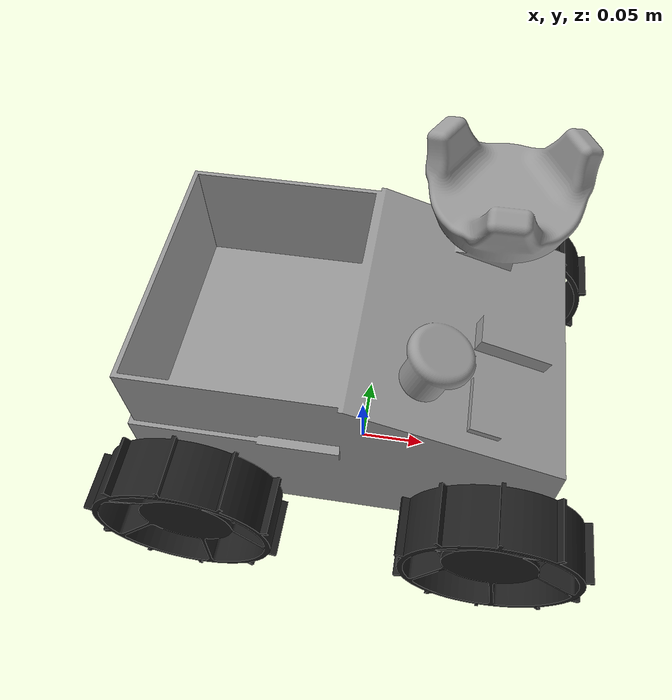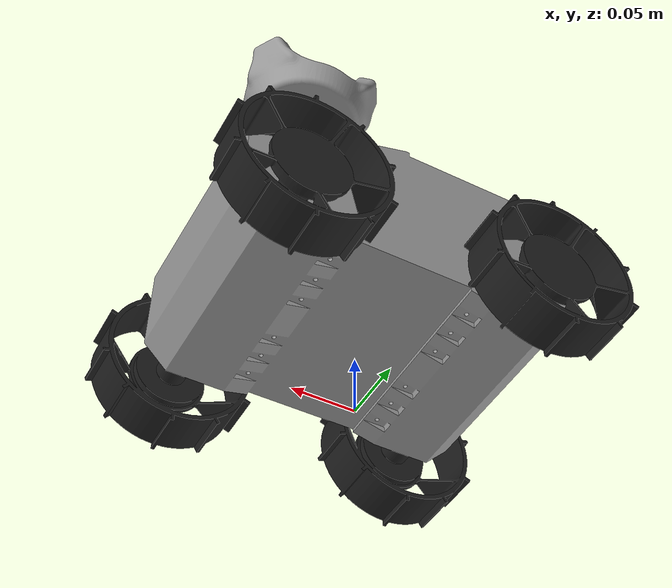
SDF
<?xml version='1.0'?>
<sdf version='1.6'>
  <model name='transporter'>
    <link name='base_link'>
      <pose frame=''>0 0.003 0.1576 0 -0 0</pose>
      <inertial>
        <mass>1</mass>
        <inertia>
          <ixx>0.166667</ixx>
          <ixy>0</ixy>
          <ixz>0</ixz>
          <iyy>0.166667</iyy>
          <iyz>0</iyz>
          <izz>0.166667</izz>
        </inertia>
        <pose frame=''>0 0 0 0 -0 0</pose>
      </inertial>
      <self_collide>0</self_collide>
      <kinematic>0</kinematic>
      <gravity>1</gravity>
      <visual name='visual'>
        <pose frame=''>0 0 0 0 -0 0</pose>
        <geometry>
          <mesh>
            <uri>/home/ssr/ros_kinetic/rmc_dev_ws/src/2018_robot/simulations/gazebo_rmc_sim/models/transporter/minibot_base_link.stl</uri>
          </mesh>
        </geometry>
        <material>
          <lighting>1</lighting>
          <script>
            <uri>file://media/materials/scripts/gazebo.material</uri>
            <name>Gazebo/Grey</name>
          </script>
          <ambient>0.3 0.3 0.3 1</ambient>
          <diffuse>0.7 0.7 0.7 1</diffuse>
          <specular>0.01 0.01 0.01 1</specular>
          <emissive>0 0 0 1</emissive>
          <shader type='vertex'>
            <normal_map>__default__</normal_map>
          </shader>
        </material>
        <cast_shadows>1</cast_shadows>
        <transparency>0</transparency>
      </visual>
      <collision name='collision_0'>
        <laser_retro>0</laser_retro>
        <max_contacts>10</max_contacts>
        <pose frame=''>0 0 0 0 -0 0</pose>
        <geometry>
          <mesh>
            <uri>/home/ssr/ros_kinetic/rmc_dev_ws/src/2018_robot/simulations/gazebo_rmc_sim/models/transporter/minibot_frame_collision.stl</uri>
          </mesh>
        </geometry>
        <surface>
          <friction>
            <ode>
              <mu>1</mu>
              <mu2>1</mu2>
              <fdir1>0 0 0</fdir1>
              <slip1>0</slip1>
              <slip2>0</slip2>
            </ode>
            <torsional>
              <coefficient>1</coefficient>
              <patch_radius>0</patch_radius>
              <surface_radius>0</surface_radius>
              <use_patch_radius>1</use_patch_radius>
              <ode>
                <slip>0</slip>
              </ode>
            </torsional>
          </friction>
          <bounce>
            <restitution_coefficient>0</restitution_coefficient>
            <threshold>1e+06</threshold>
          </bounce>
          <contact>
            <collide_without_contact>0</collide_without_contact>
            <collide_without_contact_bitmask>1</collide_without_contact_bitmask>
            <collide_bitmask>1</collide_bitmask>
            <ode>
              <soft_cfm>0</soft_cfm>
              <soft_erp>0.2</soft_erp>
              <kp>1e+13</kp>
              <kd>1</kd>
              <max_vel>0.01</max_vel>
              <min_depth>0</min_depth>
            </ode>
            <bullet>
              <split_impulse>1</split_impulse>
              <split_impulse_penetration_threshold>-0.01</split_impulse_penetration_threshold>
              <soft_cfm>0</soft_cfm>
              <soft_erp>0.2</soft_erp>
              <kp>1e+13</kp>
              <kd>1</kd>
            </bullet>
          </contact>
        </surface>
      </collision>
    </link>
    <link name='back_left_wheel'>
      <pose frame=''>-0.1 0.1205 0.085 0 0 -1.5708</pose>
      <inertial>
        <mass>1</mass>
        <inertia>
          <ixx>0.166667</ixx>
          <ixy>0</ixy>
          <ixz>0</ixz>
          <iyy>0.166667</iyy>
          <iyz>0</iyz>
          <izz>0.166667</izz>
        </inertia>
        <pose frame=''>0 0 0 0 -0 0</pose>
      </inertial>
      <self_collide>0</self_collide>
      <kinematic>0</kinematic>
      <gravity>1</gravity>
      <visual name='visual'>
        <pose frame=''>0 0 0 0 -0 0</pose>
        <geometry>
          <mesh>
            <uri>/home/ssr/ros_kinetic/rmc_dev_ws/src/2018_robot/simulations/gazebo_rmc_sim/models/transporter/minibot_wheel.stl</uri>
          </mesh>
        </geometry>
        <material>
          <lighting>1</lighting>
          <script>
            <uri>file://media/materials/scripts/gazebo.material</uri>
            <name>Gazebo/Black</name>
          </script>
          <ambient>0.3 0.3 0.3 1</ambient>
          <diffuse>0.7 0.7 0.7 1</diffuse>
          <specular>0.01 0.01 0.01 1</specular>
          <emissive>0 0 0 1</emissive>
          <shader type='vertex'>
            <normal_map>__default__</normal_map>
          </shader>
        </material>
        <cast_shadows>1</cast_shadows>
        <transparency>0</transparency>
      </visual>
      <collision name='collision_0'>
        <laser_retro>0</laser_retro>
        <max_contacts>10</max_contacts>
        <pose frame=''>0.0085 0 0 3.14159 1.57079 3.14159</pose>
        <geometry>
          <cylinder>
            <radius>0.06</radius>
            <length>0.037</length>
          </cylinder>
        </geometry>
        <surface>
          <friction>
            <ode>
              <mu>1</mu>
              <mu2>1</mu2>
              <fdir1>0 0 0</fdir1>
              <slip1>0</slip1>
              <slip2>0</slip2>
            </ode>
            <torsional>
              <coefficient>1</coefficient>
              <patch_radius>0</patch_radius>
              <surface_radius>0</surface_radius>
              <use_patch_radius>1</use_patch_radius>
              <ode>
                <slip>0</slip>
              </ode>
            </torsional>
          </friction>
          <bounce>
            <restitution_coefficient>0</restitution_coefficient>
            <threshold>1e+06</threshold>
          </bounce>
          <contact>
            <collide_without_contact>0</collide_without_contact>
            <collide_without_contact_bitmask>1</collide_without_contact_bitmask>
            <collide_bitmask>1</collide_bitmask>
            <ode>
              <soft_cfm>0</soft_cfm>
              <soft_erp>0.2</soft_erp>
              <kp>1e+13</kp>
              <kd>1</kd>
              <max_vel>0.01</max_vel>
              <min_depth>0</min_depth>
            </ode>
            <bullet>
              <split_impulse>1</split_impulse>
              <split_impulse_penetration_threshold>-0.01</split_impulse_penetration_threshold>
              <soft_cfm>0</soft_cfm>
              <soft_erp>0.2</soft_erp>
              <kp>1e+13</kp>
              <kd>1</kd>
            </bullet>
          </contact>
        </surface>
      </collision>
    </link>
    <link name='front_left_wheel'>
      <pose frame=''>0.1 0.1205 0.085 0 0 -1.5708</pose>
      <inertial>
        <mass>1</mass>
        <inertia>
          <ixx>0.166667</ixx>
          <ixy>0</ixy>
          <ixz>0</ixz>
          <iyy>0.166667</iyy>
          <iyz>0</iyz>
          <izz>0.166667</izz>
        </inertia>
        <pose frame=''>0 0 0 0 -0 0</pose>
      </inertial>
      <self_collide>0</self_collide>
      <kinematic>0</kinematic>
      <gravity>1</gravity>
      <visual name='visual'>
        <pose frame=''>0 0 0 0 -0 0</pose>
        <geometry>
          <mesh>
            <uri>/home/ssr/ros_kinetic/rmc_dev_ws/src/2018_robot/simulations/gazebo_rmc_sim/models/transporter/minibot_wheel.stl</uri>
          </mesh>
        </geometry>
        <material>
          <lighting>1</lighting>
          <script>
            <uri>file://media/materials/scripts/gazebo.material</uri>
            <name>Gazebo/Black</name>
          </script>
          <ambient>0.3 0.3 0.3 1</ambient>
          <diffuse>0.7 0.7 0.7 1</diffuse>
          <specular>0.01 0.01 0.01 1</specular>
          <emissive>0 0 0 1</emissive>
          <shader type='vertex'>
            <normal_map>__default__</normal_map>
          </shader>
        </material>
        <cast_shadows>1</cast_shadows>
        <transparency>0</transparency>
      </visual>
      <collision name='collision_0'>
        <laser_retro>0</laser_retro>
        <max_contacts>10</max_contacts>
        <pose frame=''>0.0085 0 0 3.14159 1.57079 3.14159</pose>
        <geometry>
          <cylinder>
            <radius>0.06</radius>
            <length>0.037</length>
          </cylinder>
        </geometry>
        <surface>
          <friction>
            <ode>
              <mu>1</mu>
              <mu2>1</mu2>
              <fdir1>0 0 0</fdir1>
              <slip1>0</slip1>
              <slip2>0</slip2>
            </ode>
            <torsional>
              <coefficient>1</coefficient>
              <patch_radius>0</patch_radius>
              <surface_radius>0</surface_radius>
              <use_patch_radius>1</use_patch_radius>
              <ode>
                <slip>0</slip>
              </ode>
            </torsional>
          </friction>
          <bounce>
            <restitution_coefficient>0</restitution_coefficient>
            <threshold>1e+06</threshold>
          </bounce>
          <contact>
            <collide_without_contact>0</collide_without_contact>
            <collide_without_contact_bitmask>1</collide_without_contact_bitmask>
            <collide_bitmask>1</collide_bitmask>
            <ode>
              <soft_cfm>0</soft_cfm>
              <soft_erp>0.2</soft_erp>
              <kp>1e+13</kp>
              <kd>1</kd>
              <max_vel>0.01</max_vel>
              <min_depth>0</min_depth>
            </ode>
            <bullet>
              <split_impulse>1</split_impulse>
              <split_impulse_penetration_threshold>-0.01</split_impulse_penetration_threshold>
              <soft_cfm>0</soft_cfm>
              <soft_erp>0.2</soft_erp>
              <kp>1e+13</kp>
              <kd>1</kd>
            </bullet>
          </contact>
        </surface>
      </collision>
    </link>
    <link name='front_right_wheel'>
      <pose frame=''>0.1 -0.122 0.085 0 -0 1.5708</pose>
      <inertial>
        <mass>1</mass>
        <inertia>
          <ixx>0.166667</ixx>
          <ixy>0</ixy>
          <ixz>0</ixz>
          <iyy>0.166667</iyy>
          <iyz>0</iyz>
          <izz>0.166667</izz>
        </inertia>
        <pose frame=''>0 0 0 0 -0 0</pose>
      </inertial>
      <self_collide>0</self_collide>
      <kinematic>0</kinematic>
      <gravity>1</gravity>
      <visual name='visual'>
        <pose frame=''>0 0 0 0 -0 0</pose>
        <geometry>
          <mesh>
            <uri>/home/ssr/ros_kinetic/rmc_dev_ws/src/2018_robot/simulations/gazebo_rmc_sim/models/transporter/minibot_wheel.stl</uri>
          </mesh>
        </geometry>
        <material>
          <lighting>1</lighting>
          <script>
            <uri>file://media/materials/scripts/gazebo.material</uri>
            <name>Gazebo/Black</name>
          </script>
          <ambient>0.3 0.3 0.3 1</ambient>
          <diffuse>0.7 0.7 0.7 1</diffuse>
          <specular>0.01 0.01 0.01 1</specular>
          <emissive>0 0 0 1</emissive>
          <shader type='vertex'>
            <normal_map>__default__</normal_map>
          </shader>
        </material>
        <cast_shadows>1</cast_shadows>
        <transparency>0</transparency>
      </visual>
      <collision name='collision_0'>
        <laser_retro>0</laser_retro>
        <max_contacts>10</max_contacts>
        <pose frame=''>0.0085 0 0 3.14159 1.57079 3.14159</pose>
        <geometry>
          <cylinder>
            <radius>0.06</radius>
            <length>0.037</length>
          </cylinder>
        </geometry>
        <surface>
          <friction>
            <ode>
              <mu>1</mu>
              <mu2>1</mu2>
              <fdir1>0 0 0</fdir1>
              <slip1>0</slip1>
              <slip2>0</slip2>
            </ode>
            <torsional>
              <coefficient>1</coefficient>
              <patch_radius>0</patch_radius>
              <surface_radius>0</surface_radius>
              <use_patch_radius>1</use_patch_radius>
              <ode>
                <slip>0</slip>
              </ode>
            </torsional>
          </friction>
          <bounce>
            <restitution_coefficient>0</restitution_coefficient>
            <threshold>1e+06</threshold>
          </bounce>
          <contact>
            <collide_without_contact>0</collide_without_contact>
            <collide_without_contact_bitmask>1</collide_without_contact_bitmask>
            <collide_bitmask>1</collide_bitmask>
            <ode>
              <soft_cfm>0</soft_cfm>
              <soft_erp>0.2</soft_erp>
              <kp>1e+13</kp>
              <kd>1</kd>
              <max_vel>0.01</max_vel>
              <min_depth>0</min_depth>
            </ode>
            <bullet>
              <split_impulse>1</split_impulse>
              <split_impulse_penetration_threshold>-0.01</split_impulse_penetration_threshold>
              <soft_cfm>0</soft_cfm>
              <soft_erp>0.2</soft_erp>
              <kp>1e+13</kp>
              <kd>1</kd>
            </bullet>
          </contact>
        </surface>
      </collision>
    </link>
    <link name='back_right_wheel'>
      <pose frame=''>-0.1 -0.122 0.085 0 -0 1.5708</pose>
      <inertial>
        <mass>1</mass>
        <inertia>
          <ixx>0.166667</ixx>
          <ixy>0</ixy>
          <ixz>0</ixz>
          <iyy>0.166667</iyy>
          <iyz>0</iyz>
          <izz>0.166667</izz>
        </inertia>
        <pose frame=''>0 0 0 0 -0 0</pose>
      </inertial>
      <self_collide>0</self_collide>
      <kinematic>0</kinematic>
      <gravity>1</gravity>
      <visual name='visual'>
        <pose frame=''>0 0 0 0 -0 0</pose>
        <geometry>
          <mesh>
            <uri>/home/ssr/ros_kinetic/rmc_dev_ws/src/2018_robot/simulations/gazebo_rmc_sim/models/transporter/minibot_wheel.stl</uri>
          </mesh>
        </geometry>
        <material>
          <lighting>1</lighting>
          <script>
            <uri>file://media/materials/scripts/gazebo.material</uri>
            <name>Gazebo/Black</name>
          </script>
          <ambient>0.3 0.3 0.3 1</ambient>
          <diffuse>0.7 0.7 0.7 1</diffuse>
          <specular>0.01 0.01 0.01 1</specular>
          <emissive>0 0 0 1</emissive>
          <shader type='vertex'>
            <normal_map>__default__</normal_map>
          </shader>
        </material>
        <cast_shadows>1</cast_shadows>
        <transparency>0</transparency>
      </visual>
      <collision name='collision_0'>
        <laser_retro>0</laser_retro>
        <max_contacts>10</max_contacts>
        <pose frame=''>0.0085 0 0 3.14159 1.57079 3.14159</pose>
        <geometry>
          <cylinder>
            <radius>0.06</radius>
            <length>0.037</length>
          </cylinder>
        </geometry>
        <surface>
          <friction>
            <ode>
              <mu>1</mu>
              <mu2>1</mu2>
              <fdir1>0 0 0</fdir1>
              <slip1>0</slip1>
              <slip2>0</slip2>
            </ode>
            <torsional>
              <coefficient>1</coefficient>
              <patch_radius>0</patch_radius>
              <surface_radius>0</surface_radius>
              <use_patch_radius>1</use_patch_radius>
              <ode>
                <slip>0</slip>
              </ode>
            </torsional>
          </friction>
          <bounce>
            <restitution_coefficient>0</restitution_coefficient>
            <threshold>1e+06</threshold>
          </bounce>
          <contact>
            <collide_without_contact>0</collide_without_contact>
            <collide_without_contact_bitmask>1</collide_without_contact_bitmask>
            <collide_bitmask>1</collide_bitmask>
            <ode>
              <soft_cfm>0</soft_cfm>
              <soft_erp>0.2</soft_erp>
              <kp>1e+13</kp>
              <kd>1</kd>
              <max_vel>0.01</max_vel>
              <min_depth>0</min_depth>
            </ode>
            <bullet>
              <split_impulse>1</split_impulse>
              <split_impulse_penetration_threshold>-0.01</split_impulse_penetration_threshold>
              <soft_cfm>0</soft_cfm>
              <soft_erp>0.2</soft_erp>
              <kp>1e+13</kp>
              <kd>1</kd>
            </bullet>
          </contact>
        </surface>
      </collision>
    </link>
    <joint name='BL_Wheel' type='revolute'>
      <parent>base_link</parent>
      <child>back_left_wheel</child>
      <pose frame=''>0 0 0 0 -0 0</pose>
      <axis>
        <xyz>1 0 0</xyz>
        <use_parent_model_frame>0</use_parent_model_frame>
        <limit>
          <lower>-1.79769e+308</lower>
          <upper>1.79769e+308</upper>
          <effort>-1</effort>
          <velocity>1</velocity>
        </limit>
        <dynamics>
          <spring_reference>0</spring_reference>
          <spring_stiffness>0</spring_stiffness>
          <damping>10</damping>
          <friction>1</friction>
        </dynamics>
      </axis>
      <physics>
        <ode>
          <limit>
            <cfm>0</cfm>
            <erp>0.2</erp>
          </limit>
          <suspension>
            <cfm>0</cfm>
            <erp>0.2</erp>
          </suspension>
        </ode>
      </physics>
    </joint>
    <joint name='FL_Wheel' type='revolute'>
      <parent>base_link</parent>
      <child>front_left_wheel</child>
      <pose frame=''>0 0 0 0 -0 0</pose>
      <axis>
        <xyz>1 0 0</xyz>
        <use_parent_model_frame>0</use_parent_model_frame>
        <limit>
          <lower>-1.79769e+308</lower>
          <upper>1.79769e+308</upper>
          <effort>-1</effort>
          <velocity>1</velocity>
        </limit>
        <dynamics>
          <spring_reference>0</spring_reference>
          <spring_stiffness>0</spring_stiffness>
          <damping>10</damping>
          <friction>1</friction>
        </dynamics>
      </axis>
      <physics>
        <ode>
          <limit>
            <cfm>0</cfm>
            <erp>0.2</erp>
          </limit>
          <suspension>
            <cfm>0</cfm>
            <erp>0.2</erp>
          </suspension>
        </ode>
      </physics>
    </joint>
    <joint name='BR_Wheel' type='revolute'>
      <parent>base_link</parent>
      <child>back_right_wheel</child>
      <pose frame=''>0 0 0 0 -0 0</pose>
      <axis>
        <xyz>1 0 0</xyz>
        <use_parent_model_frame>0</use_parent_model_frame>
        <limit>
          <lower>-1.79769e+308</lower>
          <upper>1.79769e+308</upper>
          <effort>-1</effort>
          <velocity>1</velocity>
        </limit>
        <dynamics>
          <spring_reference>0</spring_reference>
          <spring_stiffness>0</spring_stiffness>
          <damping>10</damping>
          <friction>1</friction>
        </dynamics>
      </axis>
      <physics>
        <ode>
          <limit>
            <cfm>0</cfm>
            <erp>0.2</erp>
          </limit>
          <suspension>
            <cfm>0</cfm>
            <erp>0.2</erp>
          </suspension>
        </ode>
      </physics>
    </joint>
    <joint name='FR_Wheel' type='revolute'>
      <parent>base_link</parent>
      <child>front_right_wheel</child>
      <pose frame=''>0 0 0 0 -0 0</pose>
      <axis>
        <xyz>1 0 0</xyz>
        <use_parent_model_frame>0</use_parent_model_frame>
        <limit>
          <lower>-1.79769e+308</lower>
          <upper>1.79769e+308</upper>
          <effort>-1</effort>
          <velocity>1</velocity>
        </limit>
        <dynamics>
          <spring_reference>0</spring_reference>
          <spring_stiffness>0</spring_stiffness>
          <damping>10</damping>
          <friction>1</friction>
        </dynamics>
      </axis>
      <physics>
        <ode>
          <limit>
            <cfm>0</cfm>
            <erp>0.2</erp>
          </limit>
          <suspension>
            <cfm>0</cfm>
            <erp>0.2</erp>
          </suspension>
        </ode>
      </physics>
    </joint>
    <static>0</static>
    <allow_auto_disable>1</allow_auto_disable>
  </model>
</sdf>
